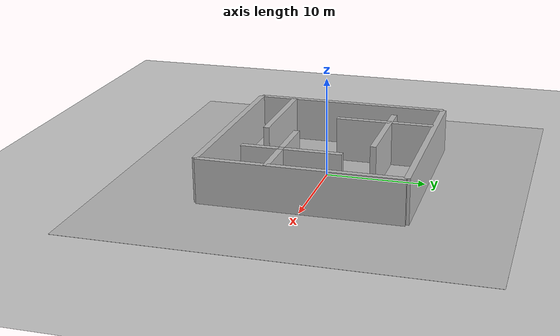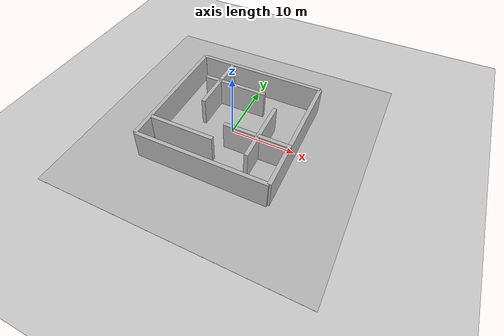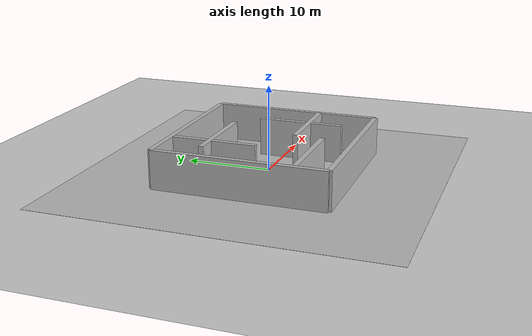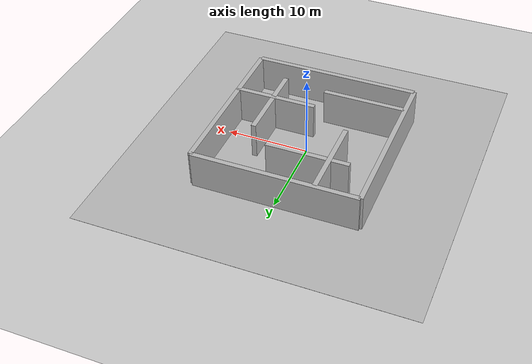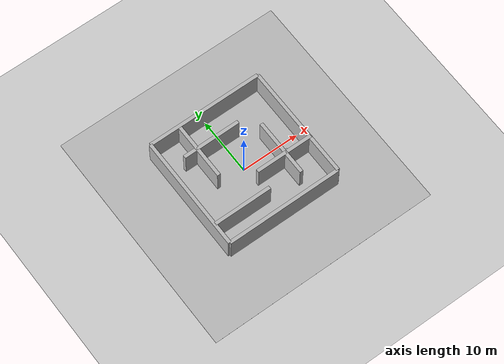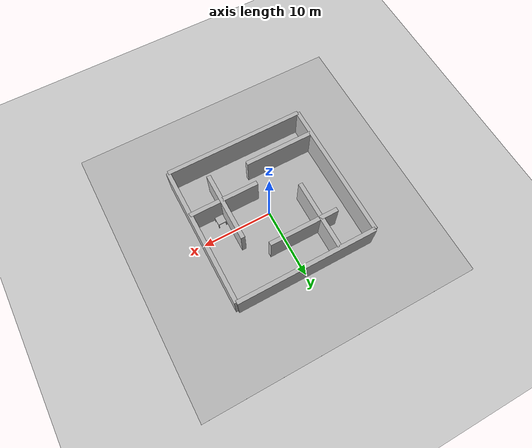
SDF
<sdf version="1.7">
 <world name="default">
  <physics type="ode">
   <ode>
    <solver>
     <type>quick</type>
     <iters>10</iters>
     <sor>1.3</sor>
     <use_dynamic_moi_rescaling>0</use_dynamic_moi_rescaling>
    </solver>
    <constraints>
     <cfm>1e-05</cfm>
     <erp>0.2</erp>
     <contact_max_correcting_vel>1000</contact_max_correcting_vel>
     <contact_surface_layer>0.01</contact_surface_layer>
    </constraints>
   </ode>
   <max_step_size>0.004</max_step_size>
   <real_time_factor>1</real_time_factor>
   <real_time_update_rate>250</real_time_update_rate>
   <gravity>0 0 -9.8066</gravity>
   <magnetic_field>6.0e-6 2.3e-5 -4.2e-5</magnetic_field>
  </physics>
  <light name="sun" type="directional">
   <cast_shadows>0</cast_shadows>
   <pose>0 0 100 0 -0 0</pose>
   <diffuse>0.8 0.8 0.8 1</diffuse>
   <specular>0.9 0.9 0.9 1</specular>
   <attenuation>
    <range>1000</range>
    <constant>0.9</constant>
    <linear>0.01</linear>
    <quadratic>0.001</quadratic>
   </attenuation>
   <direction>0.2 0.2 -0.9</direction>
   <spot><inner_angle>0</inner_angle><outer_angle>0</outer_angle><falloff>0</falloff></spot>
  </light>
  <scene><shadows>0</shadows><ambient>0.4 0.4 0.4 1</ambient><background>0.7 0.7 0.7 1</background></scene>
  <model name="ground_plane">
   <static>1</static>
   <link name="link">
    <collision name="collision">
     <geometry><plane><normal>0 0 1</normal><size>100 100</size></plane></geometry>
     <surface><friction><ode><mu>100</mu><mu2>50</mu2></ode></friction></surface>
    </collision>
    <visual name="visual">
     <cast_shadows>0</cast_shadows>
     <geometry><plane><normal>0 0 1</normal><size>100 100</size></plane></geometry>
     <material>
      <script><uri>file://media/materials/scripts/gazebo.material</uri><name>Gazebo/Grey</name></script>
     </material>
    </visual>
   </link>
  </model>
  <model name="texture">
   <pose>0.074996 -0.036148 0 0 -0 0</pose>
   <static>1</static>
   <link name="sunray">
    <visual name="visual">
     <cast_shadows>0</cast_shadows>
     <geometry><box><size>40 40 0.01</size></box></geometry>
     <material>
      <script><uri>model://yundrone_logo/yundrone_logo.material</uri><name>yundrone_logo</name></script>
     </material>
    </visual>
   </link>
  </model>
  <model name="brick_box_1">
   <static>1</static>
   <link name="chassis">
    <pose>0 0 1.5 0 -0 0</pose>
    <collision name="collision"><geometry><box><size>20 0.6 6</size></box></geometry></collision>
    <visual name="visual">
     <geometry>
      <mesh><uri>model://brick_box_3x1x3/meshes/simple_box.dae</uri><scale>20 0.6 6</scale></mesh>
     </geometry>
     <material>
      <script>
       <uri>model://brick_box_3x1x3/materials/scripts</uri>
       <uri>model://brick_box_3x1x3/materials/textures</uri>
       <name>BrickBox/Diffuse</name>
      </script>
     </material>
    </visual>
   </link>
   <pose>0 10 0 0 -0 0</pose>
  </model>
  <model name="brick_box_2">
   <static>1</static>
   <link name="chassis">
    <pose>0 0 1.5 0 -0 0</pose>
    <collision name="collision"><geometry><box><size>20 0.6 6</size></box></geometry></collision>
    <visual name="visual">
     <geometry>
      <mesh><uri>model://brick_box_3x1x3/meshes/simple_box.dae</uri><scale>20 0.6 6</scale></mesh>
     </geometry>
     <material>
      <script>
       <uri>model://brick_box_3x1x3/materials/scripts</uri>
       <uri>model://brick_box_3x1x3/materials/textures</uri>
       <name>BrickBox/Diffuse</name>
      </script>
     </material>
    </visual>
   </link>
   <pose>0 -10 0 0 -0 0</pose>
  </model>
  <model name="brick_box_3">
   <static>1</static>
   <link name="chassis">
    <pose>0 0 1.5 0 -0 0</pose>
    <collision name="collision"><geometry><box><size>10 0.6 6</size></box></geometry></collision>
    <visual name="visual">
     <geometry>
      <mesh><uri>model://brick_box_3x1x3/meshes/simple_box.dae</uri><scale>10 0.6 6</scale></mesh>
     </geometry>
     <material>
      <script>
       <uri>model://brick_box_3x1x3/materials/scripts</uri>
       <uri>model://brick_box_3x1x3/materials/textures</uri>
       <name>BrickBox/Diffuse</name>
      </script>
     </material>
    </visual>
   </link>
   <pose>5.20773 -3.05619 0 0 -0 0</pose>
  </model>
  <model name="brick_box_2_clone">
   <static>1</static>
   <link name="chassis">
    <pose>0 0 1.5 0 -0 0</pose>
    <collision name="collision"><geometry><box><size>20 0.6 6</size></box></geometry></collision>
    <visual name="visual">
     <geometry>
      <mesh><uri>model://brick_box_3x1x3/meshes/simple_box.dae</uri><scale>20 0.6 6</scale></mesh>
     </geometry>
     <material>
      <script>
       <uri>model://brick_box_3x1x3/materials/scripts</uri>
       <uri>model://brick_box_3x1x3/materials/textures</uri>
       <name>BrickBox/Diffuse</name>
      </script>
     </material>
    </visual>
   </link>
   <pose>10 0 0 0 -0 1.57</pose>
  </model>
  <model name="brick_box_2_clone_clone">
   <static>1</static>
   <link name="chassis">
    <pose>0 0 1.5 0 -0 0</pose>
    <collision name="collision"><geometry><box><size>20 0.6 6</size></box></geometry></collision>
    <visual name="visual">
     <geometry>
      <mesh><uri>model://brick_box_3x1x3/meshes/simple_box.dae</uri><scale>20 0.6 6</scale></mesh>
     </geometry>
     <material>
      <script>
       <uri>model://brick_box_3x1x3/materials/scripts</uri>
       <uri>model://brick_box_3x1x3/materials/textures</uri>
       <name>BrickBox/Diffuse</name>
      </script>
     </material>
    </visual>
   </link>
   <pose>-10 0 0 0 -0 1.57</pose>
  </model>
  <model name="brick_box_3_clone_0">
   <static>1</static>
   <link name="chassis">
    <pose>0 0 1.5 0 -0 0</pose>
    <collision name="collision"><geometry><box><size>10 0.6 6</size></box></geometry></collision>
    <visual name="visual">
     <geometry>
      <mesh><uri>model://brick_box_3x1x3/meshes/simple_box.dae</uri><scale>10 0.6 6</scale></mesh>
     </geometry>
     <material>
      <script>
       <uri>model://brick_box_3x1x3/materials/scripts</uri>
       <uri>model://brick_box_3x1x3/materials/textures</uri>
       <name>BrickBox/Diffuse</name>
      </script>
     </material>
    </visual>
   </link>
   <pose>-4.89671 -6.2781 0 0 -0 0</pose>
  </model>
  <model name="brick_box_4_clone">
   <static>1</static>
   <link name="chassis">
    <pose>0 0 1.5 0 -0 0</pose>
    <collision name="collision"><geometry><box><size>10 0.6 6</size></box></geometry></collision>
    <visual name="visual">
     <geometry>
      <mesh><uri>model://brick_box_3x1x3/meshes/simple_box.dae</uri><scale>10 0.6 6</scale></mesh>
     </geometry>
     <material>
      <script>
       <uri>model://brick_box_3x1x3/materials/scripts</uri>
       <uri>model://brick_box_3x1x3/materials/textures</uri>
       <name>BrickBox/Diffuse</name>
      </script>
     </material>
    </visual>
   </link>
   <pose>-4.74957 4.83571 0 0 -0 1.57</pose>
  </model>
  <model name="brick_box_4_clone_0">
   <static>1</static>
   <link name="chassis">
    <pose>0 0 1.5 0 -0 0</pose>
    <collision name="collision"><geometry><box><size>10 0.6 6</size></box></geometry></collision>
    <visual name="visual">
     <geometry>
      <mesh><uri>model://brick_box_3x1x3/meshes/simple_box.dae</uri><scale>10 0.6 6</scale></mesh>
     </geometry>
     <material>
      <script>
       <uri>model://brick_box_3x1x3/materials/scripts</uri>
       <uri>model://brick_box_3x1x3/materials/textures</uri>
       <name>BrickBox/Diffuse</name>
      </script>
     </material>
    </visual>
   </link>
   <pose>5.44394 -2.03762 0 0 -0 1.57</pose>
  </model>
  <model name="brick_box_3_clone_1_clone">
   <static>1</static>
   <link name="chassis">
    <pose>0 0 1.5 0 -0 0</pose>
    <collision name="collision"><geometry><box><size>10 0.6 6</size></box></geometry></collision>
    <visual name="visual">
     <geometry>
      <mesh><uri>model://brick_box_3x1x3/meshes/simple_box.dae</uri><scale>10 0.6 6</scale></mesh>
     </geometry>
     <material>
      <script>
       <uri>model://brick_box_3x1x3/materials/scripts</uri>
       <uri>model://brick_box_3x1x3/materials/textures</uri>
       <name>BrickBox/Diffuse</name>
      </script>
     </material>
    </visual>
   </link>
   <pose>-2.15117 5.32303 0 0 -0 0</pose>
  </model>
  <model name="nist_elevated_floor_120">
   <static>1</static>
   <link name="nist_elevated_floor_120">
    <collision name="collision">
     <geometry>
      <mesh><uri>model://nist_elevated_floor_120/meshes/nist_elevated_floor_120.dae</uri><scale>1 1 1</scale></mesh>
     </geometry>
    </collision>
    <visual name="visual">
     <geometry>
      <mesh><uri>model://nist_elevated_floor_120/meshes/nist_elevated_floor_120.dae</uri><scale>1 1 1</scale></mesh>
     </geometry>
    </visual>
   </link>
   <pose>6.47531 -1.92121 0.072696 0 -0 0</pose>
  </model>
  <gravity>0 0 -9.8</gravity>
  <magnetic_field>6e-06 2.3e-05 -4.2e-05</magnetic_field>
  <atmosphere type="adiabatic"/>
  <spherical_coordinates>
   <surface_model>EARTH_WGS84</surface_model>
   <latitude_deg>0</latitude_deg>
   <longitude_deg>0</longitude_deg>
   <elevation>0</elevation>
   <heading_deg>0</heading_deg>
  </spherical_coordinates>
 </world>
</sdf>
